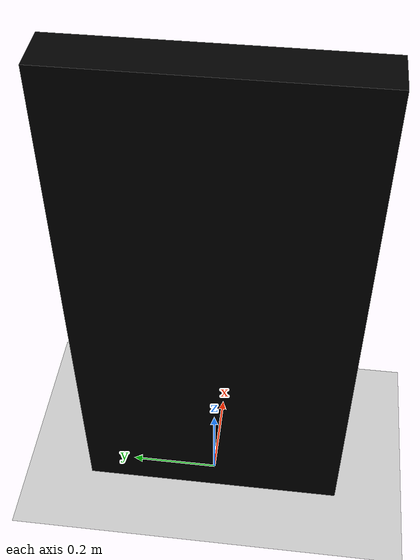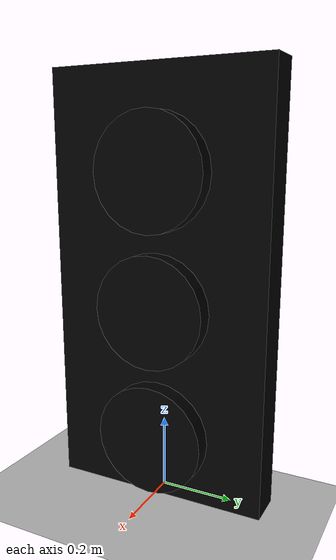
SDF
<sdf version="1.7">
 <world name="default">
  <light name="sun" type="directional">
   <pose>0 0 10 0 -0 0</pose>
   <diffuse>0.8 0.8 0.8 1</diffuse>
   <specular>0.2 0.2 0.2 1</specular>
   <attenuation>
    <range>1000</range>
    <constant>0.9</constant>
    <linear>0.01</linear>
    <quadratic>0.001</quadratic>
   </attenuation>
   <direction>-0.5 0.1 -0.9</direction>
   <spot><inner_angle>0</inner_angle><outer_angle>0</outer_angle><falloff>0</falloff></spot>
  </light>
  <model name="ground_plane">
   <static>1</static>
   <link name="link">
    <collision name="collision">
     <geometry><plane><normal>0 0 1</normal><size>100 100</size></plane></geometry>
     <surface>
      <contact><collide_bitmask>65535</collide_bitmask></contact>
      <friction><ode><mu>100</mu><mu2>50</mu2></ode></friction>
     </surface>
    </collision>
    <visual name="visual">
     <cast_shadows>0</cast_shadows>
     <geometry><plane><normal>0 0 1</normal><size>100 100</size></plane></geometry>
     <material>
      <script><uri>file://media/materials/scripts/gazebo.material</uri><name>Gazebo/Grey</name></script>
     </material>
    </visual>
   </link>
  </model>
  <model name="gazebo_traffic_light">
   <plugin name="traffic_light_plugin" filename="/home/cadete/amr_world/ws/install/gazebo_traffic_light/lib/gazebo_traffic_light/libgazebo_traffic_light.so"/>
   <static>false</static>
   <link name="light_fixture">
    <gravity>false</gravity>
    <visual name="visual">
     <pose>0 0 0.535 0 0 0</pose>
     <geometry><box><size>0.1 0.6 1.2</size></box></geometry>
     <material><ambient>0 0 0 1</ambient><diffuse>0 0 0 1</diffuse><specular>0 0 0 1</specular></material>
    </visual>
    <collision name="collision">
     <pose>0 0 0.535 0 0 0</pose>
     <geometry><box><size>0.1 0.6 1.2</size></box></geometry>
    </collision>
   </link>
   <link name="green_off">
    <gravity>false</gravity>
    <pose>0.075 0 0.175 0 1.5707 0</pose>
    <collision name="collision">
     <geometry><cylinder><radius>0.15</radius><length>0.05</length></cylinder></geometry>
    </collision>
    <visual name="visual">
     <geometry><cylinder><radius>0.15</radius><length>0.05</length></cylinder></geometry>
     <material>
      <ambient>0 1 0 1</ambient>
      <diffuse>0 0 0 1</diffuse>
      <specular>0 0 0 1</specular>
      <emissive>0 0 0 1</emissive>
     </material>
    </visual>
   </link>
   <link name="green_on">
    <gravity>false</gravity>
    <pose>0 0 0.175 0 1.5707 0</pose>
    <collision name="collision">
     <geometry><cylinder><radius>0.15</radius><length>0.002</length></cylinder></geometry>
    </collision>
    <visual name="visual">
     <geometry><cylinder><radius>0.15</radius><length>0.002</length></cylinder></geometry>
     <material>
      <ambient>0 0 0 1</ambient>
      <diffuse>0 0 0 1</diffuse>
      <specular>0 0 0 1</specular>
      <emissive>0 1 0 1</emissive>
     </material>
    </visual>
   </link>
   <link name="yellow_off">
    <gravity>false</gravity>
    <pose>0.075 0 0.525 0 1.5707 0</pose>
    <collision name="collision">
     <geometry><cylinder><radius>0.15</radius><length>0.05</length></cylinder></geometry>
    </collision>
    <visual name="visual">
     <geometry><cylinder><radius>0.15</radius><length>0.05</length></cylinder></geometry>
     <material>
      <ambient>1 1 0 1</ambient>
      <diffuse>0 0 0 1</diffuse>
      <specular>0 0 0 1</specular>
      <emissive>0 0 0 1</emissive>
     </material>
    </visual>
   </link>
   <link name="yellow_on">
    <gravity>false</gravity>
    <pose>0 0 0.525 0 1.5707 0</pose>
    <collision name="collision">
     <geometry><cylinder><radius>0.15</radius><length>0.002</length></cylinder></geometry>
    </collision>
    <visual name="visual">
     <geometry><cylinder><radius>0.15</radius><length>0.002</length></cylinder></geometry>
     <material>
      <ambient>0 0 0 1</ambient>
      <diffuse>0 0 0 1</diffuse>
      <specular>0 0 0 1</specular>
      <emissive>1 1 0 1</emissive>
     </material>
    </visual>
   </link>
   <link name="red_off">
    <gravity>false</gravity>
    <pose>0.075 0 0.875 0 1.5707 0</pose>
    <collision name="collision">
     <geometry><cylinder><radius>0.15</radius><length>0.05</length></cylinder></geometry>
    </collision>
    <visual name="visual">
     <geometry><cylinder><radius>0.15</radius><length>0.05</length></cylinder></geometry>
     <material>
      <ambient>1 0 0 1</ambient>
      <diffuse>0 0 0 1</diffuse>
      <specular>0 0 0 1</specular>
      <emissive>0 0 0 1</emissive>
     </material>
    </visual>
   </link>
   <link name="red_on">
    <gravity>false</gravity>
    <pose>0 0 0.875 0 1.5707 0</pose>
    <collision name="collision">
     <geometry><cylinder><radius>0.15</radius><length>0.002</length></cylinder></geometry>
    </collision>
    <visual name="visual">
     <geometry><cylinder><radius>0.15</radius><length>0.002</length></cylinder></geometry>
     <material>
      <ambient>0 0 0 1</ambient>
      <diffuse>0 0 0 1</diffuse>
      <specular>0 0 0 1</specular>
      <emissive>1 0 0 1</emissive>
     </material>
    </visual>
   </link>
   <joint name="green_switch" type="prismatic">
    <parent>green_off</parent>
    <child>green_on</child>
    <axis><xyz>0 0 1</xyz><limit><lower>0</lower><upper>0.101</upper></limit></axis>
   </joint>
   <joint name="green_base" type="fixed"><parent>light_fixture</parent><child>green_off</child></joint>
   <joint name="yellow_switch" type="prismatic">
    <parent>yellow_off</parent>
    <child>yellow_on</child>
    <axis><xyz>0 0 1</xyz><limit><lower>0</lower><upper>0.101</upper></limit></axis>
   </joint>
   <joint name="yellow_base" type="fixed"><parent>light_fixture</parent><child>yellow_off</child></joint>
   <joint name="red_switch" type="prismatic">
    <parent>red_off</parent>
    <child>red_on</child>
    <axis><xyz>0 0 1</xyz><limit><lower>0</lower><upper>0.101</upper></limit></axis>
   </joint>
   <joint name="red_base" type="fixed"><parent>light_fixture</parent><child>red_off</child></joint>
  </model>
  <gravity>0 0 -9.8</gravity>
  <magnetic_field>6e-06 2.3e-05 -4.2e-05</magnetic_field>
  <atmosphere type="adiabatic"/>
  <physics type="ode">
   <max_step_size>0.001</max_step_size>
   <real_time_factor>1</real_time_factor>
   <real_time_update_rate>1000</real_time_update_rate>
  </physics>
  <scene><ambient>0.4 0.4 0.4 1</ambient><background>0.7 0.7 0.7 1</background><shadows>1</shadows></scene>
  <spherical_coordinates>
   <surface_model>EARTH_WGS84</surface_model>
   <latitude_deg>0</latitude_deg>
   <longitude_deg>0</longitude_deg>
   <elevation>0</elevation>
   <heading_deg>0</heading_deg>
  </spherical_coordinates>
 </world>
</sdf>
